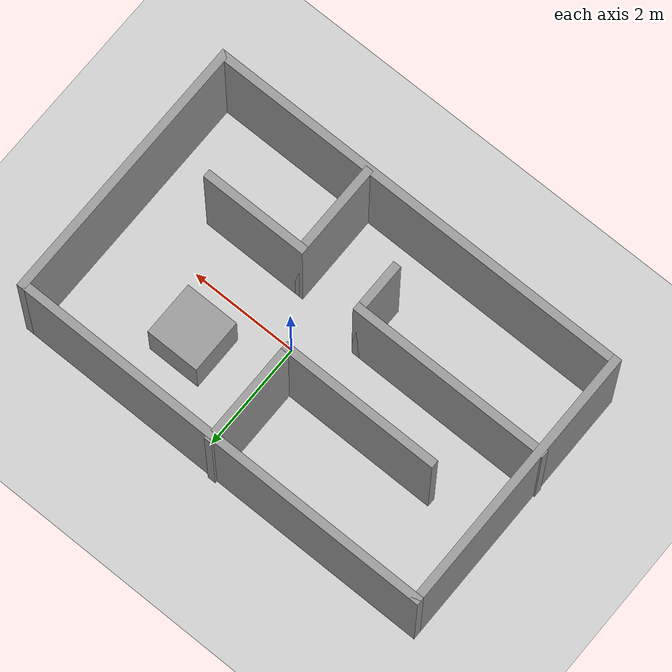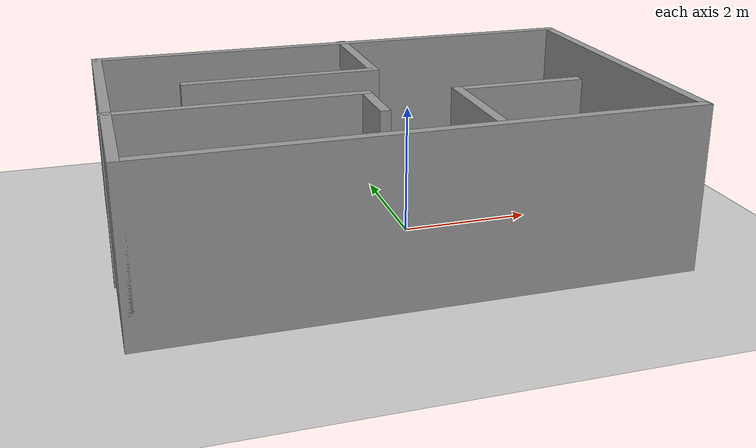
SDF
<sdf version="1.7">
 <world name="default">
  <light name="sun" type="directional">
   <pose>0 0 10 0 -0 0</pose>
   <diffuse>0.8 0.8 0.8 1</diffuse>
   <specular>0.2 0.2 0.2 1</specular>
   <attenuation>
    <range>1000</range>
    <constant>0.9</constant>
    <linear>0.01</linear>
    <quadratic>0.001</quadratic>
   </attenuation>
   <direction>-0.5 0.1 -0.9</direction>
   <spot><inner_angle>0</inner_angle><outer_angle>0</outer_angle><falloff>0</falloff></spot>
  </light>
  <model name="ground_plane">
   <static>1</static>
   <link name="link">
    <collision name="collision">
     <geometry><plane><normal>0 0 1</normal><size>100 100</size></plane></geometry>
     <surface>
      <contact><collide_bitmask>65535</collide_bitmask></contact>
      <friction><ode><mu>100</mu><mu2>50</mu2></ode></friction>
     </surface>
    </collision>
    <visual name="visual">
     <cast_shadows>0</cast_shadows>
     <geometry><plane><normal>0 0 1</normal><size>100 100</size></plane></geometry>
     <material>
      <script><uri>file://media/materials/scripts/gazebo.material</uri><name>Gazebo/Grey</name></script>
     </material>
    </visual>
   </link>
  </model>
  <gravity>0 0 -9.8</gravity>
  <magnetic_field>6e-06 2.3e-05 -4.2e-05</magnetic_field>
  <atmosphere type="adiabatic"/>
  <physics type="ode">
   <max_step_size>0.001</max_step_size>
   <real_time_factor>1</real_time_factor>
   <real_time_update_rate>1000</real_time_update_rate>
  </physics>
  <scene><ambient>0.4 0.4 0.4 1</ambient><background>0.7 0.7 0.7 1</background><shadows>1</shadows></scene>
  <audio><device>default</device></audio>
  <spherical_coordinates>
   <surface_model>EARTH_WGS84</surface_model>
   <latitude_deg>0</latitude_deg>
   <longitude_deg>0</longitude_deg>
   <elevation>0</elevation>
   <heading_deg>0</heading_deg>
  </spherical_coordinates>
  <model name="room">
   <pose>-0.091954 0.74764 0 0 -0 0</pose>
   <link name="Wall_1">
    <collision name="Wall_1_Collision">
     <geometry><box><size>8 0.15 2.5</size></box></geometry>
     <pose>0 0 1.25 0 -0 0</pose>
    </collision>
    <visual name="Wall_1_Visual">
     <pose>0 0 1.25 0 -0 0</pose>
     <geometry><box><size>8 0.15 2.5</size></box></geometry>
     <material>
      <script><uri>file://media/materials/scripts/gazebo.material</uri><name>Gazebo/Grey</name></script>
      <ambient>1 1 1 1</ambient>
     </material>
     <meta><layer>0</layer></meta>
    </visual>
    <pose>-0.394306 1.58933 0 0 -0 3.14159</pose>
   </link>
   <link name="Wall_10">
    <collision name="Wall_10_Collision">
     <geometry><box><size>3 0.15 2.5</size></box></geometry>
     <pose>0 0 1.25 0 -0 0</pose>
    </collision>
    <visual name="Wall_10_Visual">
     <pose>0 0 1.25 0 -0 0</pose>
     <geometry><box><size>3 0.15 2.5</size></box></geometry>
     <material>
      <script><uri>file://media/materials/scripts/gazebo.material</uri><name>Gazebo/Grey</name></script>
      <ambient>1 1 1 1</ambient>
     </material>
     <meta><layer>0</layer></meta>
    </visual>
    <pose>-1.71111 -0.218394 0 0 -0 3.14159</pose>
   </link>
   <link name="Wall_15">
    <collision name="Wall_15_Collision">
     <geometry><box><size>1.75 0.15 2.5</size></box></geometry>
     <pose>0 0 1.25 0 -0 0</pose>
    </collision>
    <visual name="Wall_15_Visual">
     <pose>0 0 1.25 0 -0 0</pose>
     <geometry><box><size>1.75 0.15 2.5</size></box></geometry>
     <material>
      <script><uri>file://media/materials/scripts/gazebo.material</uri><name>Gazebo/Grey</name></script>
      <ambient>1 1 1 1</ambient>
     </material>
     <meta><layer>0</layer></meta>
    </visual>
    <pose>0.5709 -2.39565 0 0 -0 1.5708</pose>
   </link>
   <link name="Wall_16">
    <collision name="Wall_16_Collision">
     <geometry><box><size>2 0.15 2.5</size></box></geometry>
     <pose>0 0 1.25 0 -0 0</pose>
    </collision>
    <visual name="Wall_16_Visual">
     <pose>0 0 1.25 0 -0 0</pose>
     <geometry><box><size>2 0.15 2.5</size></box></geometry>
     <material>
      <script><uri>file://media/materials/scripts/gazebo.material</uri><name>Gazebo/Grey</name></script>
      <ambient>1 1 1 1</ambient>
     </material>
     <meta><layer>0</layer></meta>
    </visual>
    <pose>1.4959 -1.59565 0 0 -0 0</pose>
   </link>
   <link name="Wall_2">
    <collision name="Wall_2_Collision">
     <geometry><box><size>5 0.15 2.5</size></box></geometry>
     <pose>0 0 1.25 0 -0 0</pose>
    </collision>
    <visual name="Wall_2_Visual">
     <pose>0 0 1.25 0 -0 0</pose>
     <geometry><box><size>5 0.15 2.5</size></box></geometry>
     <material>
      <script><uri>file://media/materials/scripts/gazebo.material</uri><name>Gazebo/Grey</name></script>
      <ambient>1 1 1 1</ambient>
     </material>
     <meta><layer>0</layer></meta>
    </visual>
    <pose>-4.31931 -0.835669 0 0 -0 -1.5708</pose>
   </link>
   <link name="Wall_21">
    <collision name="Wall_21_Collision">
     <geometry><box><size>3.75 0.15 2.5</size></box></geometry>
     <pose>0 0 1.25 0 -0 0</pose>
    </collision>
    <visual name="Wall_21_Visual">
     <pose>0 0 1.25 0 -0 0</pose>
     <geometry><box><size>3.75 0.15 2.5</size></box></geometry>
     <material>
      <script><uri>file://media/materials/scripts/gazebo.material</uri><name>Gazebo/Grey</name></script>
      <ambient>1 1 1 1</ambient>
     </material>
     <meta><layer>0</layer></meta>
    </visual>
    <pose>-2.54381 -1.41166 0 0 -0 0</pose>
   </link>
   <link name="Wall_22">
    <collision name="Wall_22_Collision">
     <geometry><box><size>1 0.15 2.5</size></box></geometry>
     <pose>0 0 1.25 0 -0 0</pose>
    </collision>
    <visual name="Wall_22_Visual">
     <pose>0 0 1.25 0 -0 0</pose>
     <geometry><box><size>1 0.15 2.5</size></box></geometry>
     <material>
      <script><uri>file://media/materials/scripts/gazebo.material</uri><name>Gazebo/Grey</name></script>
      <ambient>1 1 1 1</ambient>
     </material>
     <meta><layer>0</layer></meta>
    </visual>
    <pose>-0.743807 -1.83666 0 0 -0 -1.5708</pose>
   </link>
   <link name="Wall_5">
    <collision name="Wall_5_Collision">
     <geometry><box><size>8 0.15 2.5</size></box></geometry>
     <pose>0 0 1.25 0 -0 0</pose>
    </collision>
    <visual name="Wall_5_Visual">
     <pose>0 0 1.25 0 -0 0</pose>
     <geometry><box><size>8 0.15 2.5</size></box></geometry>
     <material>
      <script><uri>file://media/materials/scripts/gazebo.material</uri><name>Gazebo/Grey</name></script>
      <ambient>1 1 1 1</ambient>
     </material>
     <meta><layer>0</layer></meta>
    </visual>
    <pose>-0.394306 -3.26067 0 0 -0 0</pose>
   </link>
   <link name="Wall_6">
    <collision name="Wall_6_Collision">
     <geometry><box><size>5 0.15 2.5</size></box></geometry>
     <pose>0 0 1.25 0 -0 0</pose>
    </collision>
    <visual name="Wall_6_Visual">
     <pose>0 0 1.25 0 -0 0</pose>
     <geometry><box><size>5 0.15 2.5</size></box></geometry>
     <material>
      <script><uri>file://media/materials/scripts/gazebo.material</uri><name>Gazebo/Grey</name></script>
      <ambient>1 1 1 1</ambient>
     </material>
     <meta><layer>0</layer></meta>
    </visual>
    <pose>3.53069 -0.835669 0 0 -0 1.5708</pose>
   </link>
   <link name="Wall_9">
    <collision name="Wall_9_Collision">
     <geometry><box><size>2 0.15 2.5</size></box></geometry>
     <pose>0 0 1.25 0 -0 0</pose>
    </collision>
    <visual name="Wall_9_Visual">
     <pose>0 0 1.25 0 -0 0</pose>
     <geometry><box><size>2 0.15 2.5</size></box></geometry>
     <material>
      <script><uri>file://media/materials/scripts/gazebo.material</uri><name>Gazebo/Grey</name></script>
      <ambient>1 1 1 1</ambient>
     </material>
     <meta><layer>0</layer></meta>
    </visual>
    <pose>-0.286113 0.706606 0 0 -0 -1.5708</pose>
   </link>
   <static>1</static>
  </model>
  <model name="unit_box">
   <pose>1.27395 0.914622 0.5 0 -0 0</pose>
   <link name="link">
    <inertial>
     <mass>1</mass>
     <inertia>
      <ixx>0.166667</ixx>
      <ixy>0</ixy>
      <ixz>0</ixz>
      <iyy>0.166667</iyy>
      <iyz>0</iyz>
      <izz>0.166667</izz>
     </inertia>
    </inertial>
    <collision name="collision"><geometry><box><size>1 1 1</size></box></geometry></collision>
    <visual name="visual">
     <geometry><box><size>1 1 1</size></box></geometry>
     <material>
      <script><name>Gazebo/Grey</name><uri>file://media/materials/scripts/gazebo.material</uri></script>
     </material>
    </visual>
   </link>
  </model>
 </world>
</sdf>
